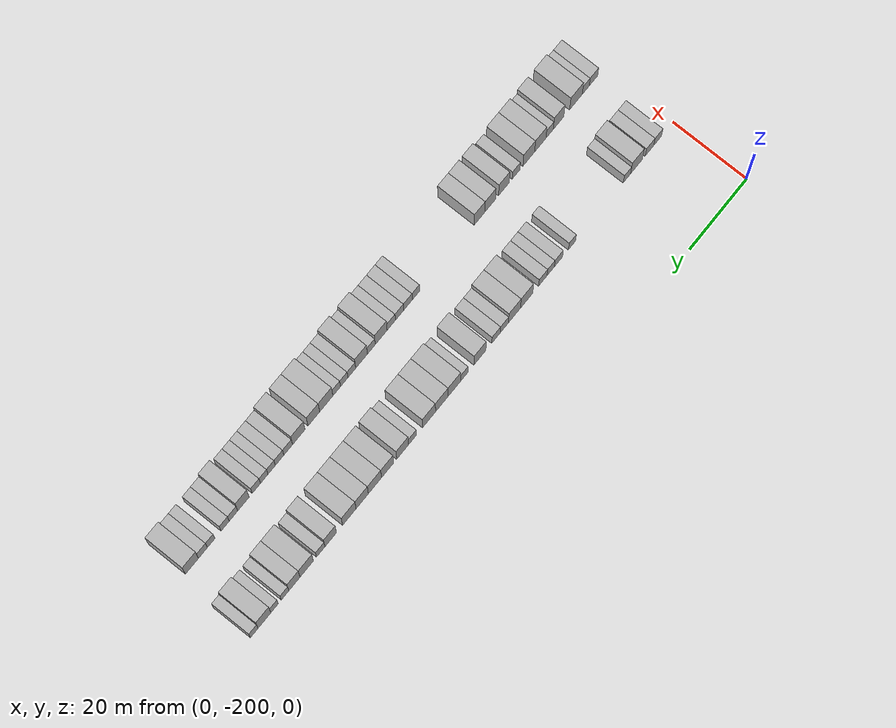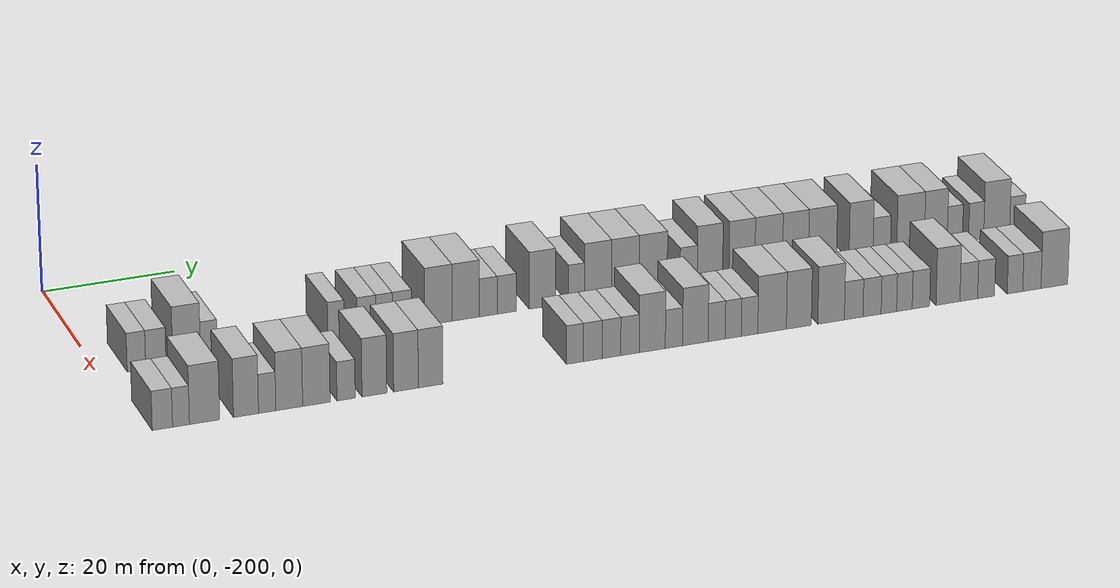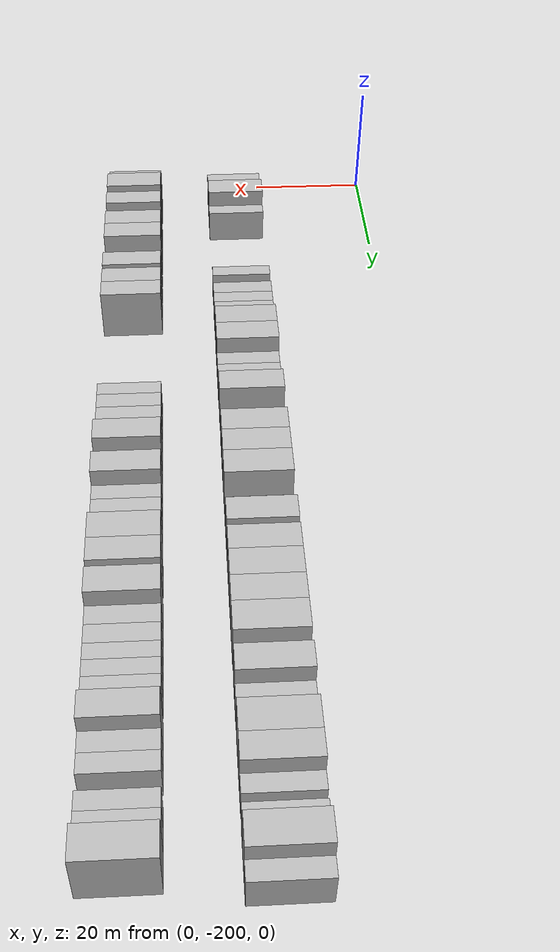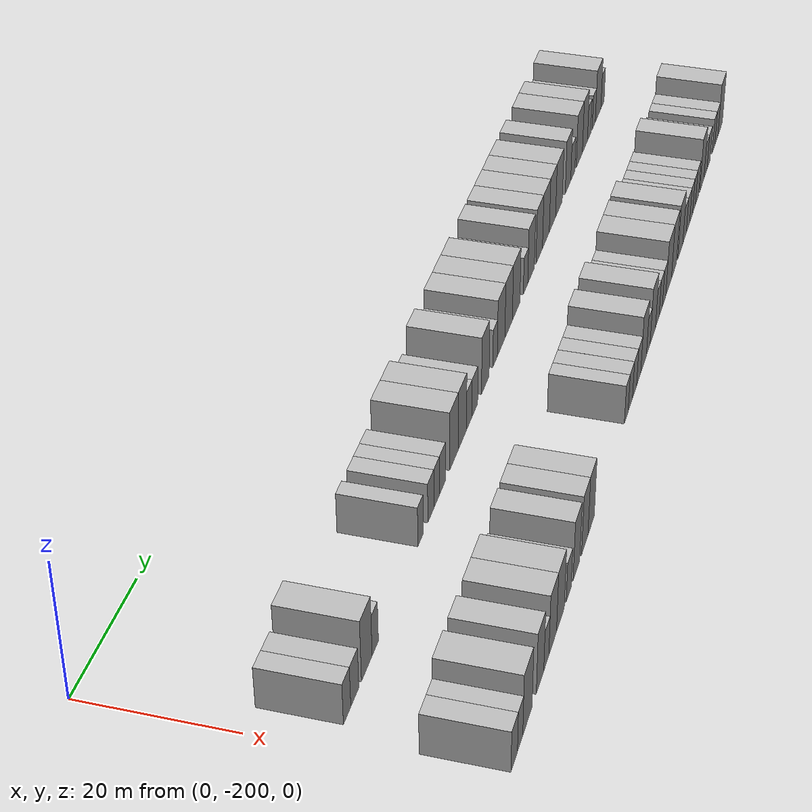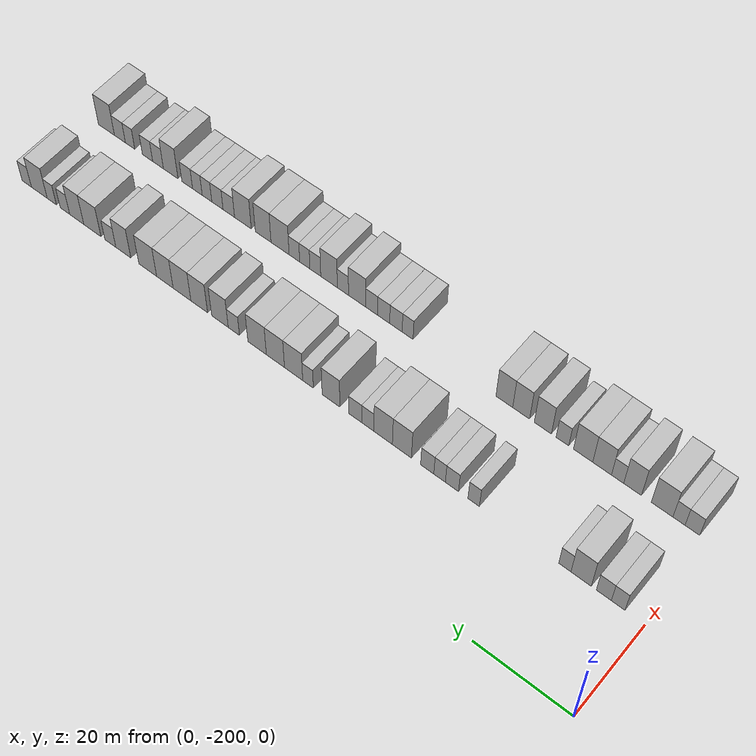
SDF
<sdf version="1.6">
 <world name="default">
  <model name="building_1">
   <static>1</static>
   <pose>25.0000 -194.6447 0 0.000000 0.000000 0.000000</pose>
   <link name="link">
    <pose>0 0 3.00 0 0 0</pose>
    <collision name="collision"><geometry><box><size>10.0000 2.7106 6.0000</size></box></geometry></collision>
    <visual name="visual">
     <cast_shadows>0</cast_shadows>
     <geometry><box><size>10.0000 2.7106 6.0000</size></box></geometry>
     <material>
      <script>
       <uri>model://HANNAS_wall/materials/scripts</uri>
       <uri>model://HANNAS_wall/materials/textures</uri>
       <name>vrc/HANNAS_wall</name>
      </script>
     </material>
    </visual>
   </link>
  </model>
  <model name="building_2">
   <static>1</static>
   <pose>25.0000 -191.7946 0 0.000000 0.000000 0.000000</pose>
   <link name="link">
    <pose>0 0 3.00 0 0 0</pose>
    <collision name="collision"><geometry><box><size>10.0000 2.9896 6.0000</size></box></geometry></collision>
    <visual name="visual">
     <cast_shadows>0</cast_shadows>
     <geometry><box><size>10.0000 2.9896 6.0000</size></box></geometry>
     <material>
      <script>
       <uri>model://HANNAS_wall/materials/scripts</uri>
       <uri>model://HANNAS_wall/materials/textures</uri>
       <name>vrc/HANNAS_wall</name>
      </script>
     </material>
    </visual>
   </link>
  </model>
  <model name="building_3">
   <static>1</static>
   <pose>25.0000 -187.2565 0 0.000000 0.000000 0.000000</pose>
   <link name="link">
    <pose>0 0 4.50 0 0 0</pose>
    <collision name="collision"><geometry><box><size>10.0000 4.0864 9.0000</size></box></geometry></collision>
    <visual name="visual">
     <cast_shadows>0</cast_shadows>
     <geometry><box><size>10.0000 4.0864 9.0000</size></box></geometry>
     <material>
      <script>
       <uri>model://HANNAS_wall/materials/scripts</uri>
       <uri>model://HANNAS_wall/materials/textures</uri>
       <name>vrc/HANNAS_wall</name>
      </script>
     </material>
    </visual>
   </link>
  </model>
  <model name="building_4">
   <static>1</static>
   <pose>25.0000 -183.9715 0 0.000000 0.000000 0.000000</pose>
   <link name="link">
    <pose>0 0 3.00 0 0 0</pose>
    <collision name="collision"><geometry><box><size>10.0000 2.4836 6.0000</size></box></geometry></collision>
    <visual name="visual">
     <cast_shadows>0</cast_shadows>
     <geometry><box><size>10.0000 2.4836 6.0000</size></box></geometry>
     <material>
      <script>
       <uri>model://HANNAS_wall/materials/scripts</uri>
       <uri>model://HANNAS_wall/materials/textures</uri>
       <name>vrc/HANNAS_wall</name>
      </script>
     </material>
    </visual>
   </link>
  </model>
  <model name="building_5">
   <static>1</static>
   <pose>25.0000 -165.0640 0 0.000000 0.000000 0.000000</pose>
   <link name="link">
    <pose>0 0 3.00 0 0 0</pose>
    <collision name="collision"><geometry><box><size>10.0000 2.4438 6.0000</size></box></geometry></collision>
    <visual name="visual">
     <cast_shadows>0</cast_shadows>
     <geometry><box><size>10.0000 2.4438 6.0000</size></box></geometry>
     <material>
      <script>
       <uri>model://HANNAS_wall/materials/scripts</uri>
       <uri>model://HANNAS_wall/materials/textures</uri>
       <name>vrc/HANNAS_wall</name>
      </script>
     </material>
    </visual>
   </link>
  </model>
  <model name="building_6">
   <static>1</static>
   <pose>25.0000 -160.4400 0 0.000000 0.000000 0.000000</pose>
   <link name="link">
    <pose>0 0 3.00 0 0 0</pose>
    <collision name="collision"><geometry><box><size>10.0000 2.8041 6.0000</size></box></geometry></collision>
    <visual name="visual">
     <cast_shadows>0</cast_shadows>
     <geometry><box><size>10.0000 2.8041 6.0000</size></box></geometry>
     <material>
      <script>
       <uri>model://HANNAS_wall/materials/scripts</uri>
       <uri>model://HANNAS_wall/materials/textures</uri>
       <name>vrc/HANNAS_wall</name>
      </script>
     </material>
    </visual>
   </link>
  </model>
  <model name="building_7">
   <static>1</static>
   <pose>25.0000 -157.7915 0 0.000000 0.000000 0.000000</pose>
   <link name="link">
    <pose>0 0 3.00 0 0 0</pose>
    <collision name="collision"><geometry><box><size>10.0000 2.4929 6.0000</size></box></geometry></collision>
    <visual name="visual">
     <cast_shadows>0</cast_shadows>
     <geometry><box><size>10.0000 2.4929 6.0000</size></box></geometry>
     <material>
      <script>
       <uri>model://HANNAS_wall/materials/scripts</uri>
       <uri>model://HANNAS_wall/materials/textures</uri>
       <name>vrc/HANNAS_wall</name>
      </script>
     </material>
    </visual>
   </link>
  </model>
  <model name="building_8">
   <static>1</static>
   <pose>25.0000 -155.1140 0 0.000000 0.000000 0.000000</pose>
   <link name="link">
    <pose>0 0 3.00 0 0 0</pose>
    <collision name="collision"><geometry><box><size>10.0000 2.8622 6.0000</size></box></geometry></collision>
    <visual name="visual">
     <cast_shadows>0</cast_shadows>
     <geometry><box><size>10.0000 2.8622 6.0000</size></box></geometry>
     <material>
      <script>
       <uri>model://HANNAS_wall/materials/scripts</uri>
       <uri>model://HANNAS_wall/materials/textures</uri>
       <name>vrc/HANNAS_wall</name>
      </script>
     </material>
    </visual>
   </link>
  </model>
  <model name="building_9">
   <static>1</static>
   <pose>25.0000 -149.5959 0 0.000000 0.000000 0.000000</pose>
   <link name="link">
    <pose>0 0 4.50 0 0 0</pose>
    <collision name="collision"><geometry><box><size>10.0000 4.1739 9.0000</size></box></geometry></collision>
    <visual name="visual">
     <cast_shadows>0</cast_shadows>
     <geometry><box><size>10.0000 4.1739 9.0000</size></box></geometry>
     <material>
      <script>
       <uri>model://HANNAS_wall/materials/scripts</uri>
       <uri>model://HANNAS_wall/materials/textures</uri>
       <name>vrc/HANNAS_wall</name>
      </script>
     </material>
    </visual>
   </link>
  </model>
  <model name="building_10">
   <static>1</static>
   <pose>25.0000 -145.4531 0 0.000000 0.000000 0.000000</pose>
   <link name="link">
    <pose>0 0 4.50 0 0 0</pose>
    <collision name="collision"><geometry><box><size>10.0000 4.1118 9.0000</size></box></geometry></collision>
    <visual name="visual">
     <cast_shadows>0</cast_shadows>
     <geometry><box><size>10.0000 4.1118 9.0000</size></box></geometry>
     <material>
      <script>
       <uri>model://HANNAS_wall/materials/scripts</uri>
       <uri>model://HANNAS_wall/materials/textures</uri>
       <name>vrc/HANNAS_wall</name>
      </script>
     </material>
    </visual>
   </link>
  </model>
  <model name="building_11">
   <static>1</static>
   <pose>25.0000 -142.0381 0 0.000000 0.000000 0.000000</pose>
   <link name="link">
    <pose>0 0 3.00 0 0 0</pose>
    <collision name="collision"><geometry><box><size>10.0000 2.7182 6.0000</size></box></geometry></collision>
    <visual name="visual">
     <cast_shadows>0</cast_shadows>
     <geometry><box><size>10.0000 2.7182 6.0000</size></box></geometry>
     <material>
      <script>
       <uri>model://HANNAS_wall/materials/scripts</uri>
       <uri>model://HANNAS_wall/materials/textures</uri>
       <name>vrc/HANNAS_wall</name>
      </script>
     </material>
    </visual>
   </link>
  </model>
  <model name="building_12">
   <static>1</static>
   <pose>25.0000 -139.2262 0 0.000000 0.000000 0.000000</pose>
   <link name="link">
    <pose>0 0 3.00 0 0 0</pose>
    <collision name="collision"><geometry><box><size>10.0000 2.9058 6.0000</size></box></geometry></collision>
    <visual name="visual">
     <cast_shadows>0</cast_shadows>
     <geometry><box><size>10.0000 2.9058 6.0000</size></box></geometry>
     <material>
      <script>
       <uri>model://HANNAS_wall/materials/scripts</uri>
       <uri>model://HANNAS_wall/materials/textures</uri>
       <name>vrc/HANNAS_wall</name>
      </script>
     </material>
    </visual>
   </link>
  </model>
  <model name="building_13">
   <static>1</static>
   <pose>25.0000 -133.7597 0 0.000000 0.000000 0.000000</pose>
   <link name="link">
    <pose>0 0 4.50 0 0 0</pose>
    <collision name="collision"><geometry><box><size>10.0000 4.0272 9.0000</size></box></geometry></collision>
    <visual name="visual">
     <cast_shadows>0</cast_shadows>
     <geometry><box><size>10.0000 4.0272 9.0000</size></box></geometry>
     <material>
      <script>
       <uri>model://HANNAS_wall/materials/scripts</uri>
       <uri>model://HANNAS_wall/materials/textures</uri>
       <name>vrc/HANNAS_wall</name>
      </script>
     </material>
    </visual>
   </link>
  </model>
  <model name="building_14">
   <static>1</static>
   <pose>25.0000 -128.5231 0 0.000000 0.000000 0.000000</pose>
   <link name="link">
    <pose>0 0 3.00 0 0 0</pose>
    <collision name="collision"><geometry><box><size>10.0000 2.4459 6.0000</size></box></geometry></collision>
    <visual name="visual">
     <cast_shadows>0</cast_shadows>
     <geometry><box><size>10.0000 2.4459 6.0000</size></box></geometry>
     <material>
      <script>
       <uri>model://HANNAS_wall/materials/scripts</uri>
       <uri>model://HANNAS_wall/materials/textures</uri>
       <name>vrc/HANNAS_wall</name>
      </script>
     </material>
    </visual>
   </link>
  </model>
  <model name="building_15">
   <static>1</static>
   <pose>25.0000 -125.1942 0 0.000000 0.000000 0.000000</pose>
   <link name="link">
    <pose>0 0 4.50 0 0 0</pose>
    <collision name="collision"><geometry><box><size>10.0000 4.2118 9.0000</size></box></geometry></collision>
    <visual name="visual">
     <cast_shadows>0</cast_shadows>
     <geometry><box><size>10.0000 4.2118 9.0000</size></box></geometry>
     <material>
      <script>
       <uri>model://HANNAS_wall/materials/scripts</uri>
       <uri>model://HANNAS_wall/materials/textures</uri>
       <name>vrc/HANNAS_wall</name>
      </script>
     </material>
    </visual>
   </link>
  </model>
  <model name="building_16">
   <static>1</static>
   <pose>25.0000 -120.9669 0 0.000000 0.000000 0.000000</pose>
   <link name="link">
    <pose>0 0 4.50 0 0 0</pose>
    <collision name="collision"><geometry><box><size>10.0000 4.2428 9.0000</size></box></geometry></collision>
    <visual name="visual">
     <cast_shadows>0</cast_shadows>
     <geometry><box><size>10.0000 4.2428 9.0000</size></box></geometry>
     <material>
      <script>
       <uri>model://HANNAS_wall/materials/scripts</uri>
       <uri>model://HANNAS_wall/materials/textures</uri>
       <name>vrc/HANNAS_wall</name>
      </script>
     </material>
    </visual>
   </link>
  </model>
  <model name="building_17">
   <static>1</static>
   <pose>25.0000 -116.6630 0 0.000000 0.000000 0.000000</pose>
   <link name="link">
    <pose>0 0 4.50 0 0 0</pose>
    <collision name="collision"><geometry><box><size>10.0000 4.3650 9.0000</size></box></geometry></collision>
    <visual name="visual">
     <cast_shadows>0</cast_shadows>
     <geometry><box><size>10.0000 4.3650 9.0000</size></box></geometry>
     <material>
      <script>
       <uri>model://HANNAS_wall/materials/scripts</uri>
       <uri>model://HANNAS_wall/materials/textures</uri>
       <name>vrc/HANNAS_wall</name>
      </script>
     </material>
    </visual>
   </link>
  </model>
  <model name="building_18">
   <static>1</static>
   <pose>25.0000 -111.1464 0 0.000000 0.000000 0.000000</pose>
   <link name="link">
    <pose>0 0 3.00 0 0 0</pose>
    <collision name="collision"><geometry><box><size>10.0000 2.6683 6.0000</size></box></geometry></collision>
    <visual name="visual">
     <cast_shadows>0</cast_shadows>
     <geometry><box><size>10.0000 2.6683 6.0000</size></box></geometry>
     <material>
      <script>
       <uri>model://HANNAS_wall/materials/scripts</uri>
       <uri>model://HANNAS_wall/materials/textures</uri>
       <name>vrc/HANNAS_wall</name>
      </script>
     </material>
    </visual>
   </link>
  </model>
  <model name="building_19">
   <static>1</static>
   <pose>25.0000 -107.8260 0 0.000000 0.000000 0.000000</pose>
   <link name="link">
    <pose>0 0 4.50 0 0 0</pose>
    <collision name="collision"><geometry><box><size>10.0000 3.9724 9.0000</size></box></geometry></collision>
    <visual name="visual">
     <cast_shadows>0</cast_shadows>
     <geometry><box><size>10.0000 3.9724 9.0000</size></box></geometry>
     <material>
      <script>
       <uri>model://HANNAS_wall/materials/scripts</uri>
       <uri>model://HANNAS_wall/materials/textures</uri>
       <name>vrc/HANNAS_wall</name>
      </script>
     </material>
    </visual>
   </link>
  </model>
  <model name="building_20">
   <static>1</static>
   <pose>25.0000 -102.8106 0 0.000000 0.000000 0.000000</pose>
   <link name="link">
    <pose>0 0 4.50 0 0 0</pose>
    <collision name="collision"><geometry><box><size>10.0000 4.0584 9.0000</size></box></geometry></collision>
    <visual name="visual">
     <cast_shadows>0</cast_shadows>
     <geometry><box><size>10.0000 4.0584 9.0000</size></box></geometry>
     <material>
      <script>
       <uri>model://HANNAS_wall/materials/scripts</uri>
       <uri>model://HANNAS_wall/materials/textures</uri>
       <name>vrc/HANNAS_wall</name>
      </script>
     </material>
    </visual>
   </link>
  </model>
  <model name="building_21">
   <static>1</static>
   <pose>25.0000 -98.6065 0 0.000000 0.000000 0.000000</pose>
   <link name="link">
    <pose>0 0 4.50 0 0 0</pose>
    <collision name="collision"><geometry><box><size>10.0000 4.3498 9.0000</size></box></geometry></collision>
    <visual name="visual">
     <cast_shadows>0</cast_shadows>
     <geometry><box><size>10.0000 4.3498 9.0000</size></box></geometry>
     <material>
      <script>
       <uri>model://HANNAS_wall/materials/scripts</uri>
       <uri>model://HANNAS_wall/materials/textures</uri>
       <name>vrc/HANNAS_wall</name>
      </script>
     </material>
    </visual>
   </link>
  </model>
  <model name="building_22">
   <static>1</static>
   <pose>25.0000 -94.3852 0 0.000000 0.000000 0.000000</pose>
   <link name="link">
    <pose>0 0 4.50 0 0 0</pose>
    <collision name="collision"><geometry><box><size>10.0000 4.0928 9.0000</size></box></geometry></collision>
    <visual name="visual">
     <cast_shadows>0</cast_shadows>
     <geometry><box><size>10.0000 4.0928 9.0000</size></box></geometry>
     <material>
      <script>
       <uri>model://HANNAS_wall/materials/scripts</uri>
       <uri>model://HANNAS_wall/materials/textures</uri>
       <name>vrc/HANNAS_wall</name>
      </script>
     </material>
    </visual>
   </link>
  </model>
  <model name="building_23">
   <static>1</static>
   <pose>25.0000 -90.1121 0 0.000000 0.000000 0.000000</pose>
   <link name="link">
    <pose>0 0 4.50 0 0 0</pose>
    <collision name="collision"><geometry><box><size>10.0000 4.4532 9.0000</size></box></geometry></collision>
    <visual name="visual">
     <cast_shadows>0</cast_shadows>
     <geometry><box><size>10.0000 4.4532 9.0000</size></box></geometry>
     <material>
      <script>
       <uri>model://HANNAS_wall/materials/scripts</uri>
       <uri>model://HANNAS_wall/materials/textures</uri>
       <name>vrc/HANNAS_wall</name>
      </script>
     </material>
    </visual>
   </link>
  </model>
  <model name="building_24">
   <static>1</static>
   <pose>25.0000 -83.9858 0 0.000000 0.000000 0.000000</pose>
   <link name="link">
    <pose>0 0 4.50 0 0 0</pose>
    <collision name="collision"><geometry><box><size>10.0000 3.7995 9.0000</size></box></geometry></collision>
    <visual name="visual">
     <cast_shadows>0</cast_shadows>
     <geometry><box><size>10.0000 3.7995 9.0000</size></box></geometry>
     <material>
      <script>
       <uri>model://HANNAS_wall/materials/scripts</uri>
       <uri>model://HANNAS_wall/materials/textures</uri>
       <name>vrc/HANNAS_wall</name>
      </script>
     </material>
    </visual>
   </link>
  </model>
  <model name="building_25">
   <static>1</static>
   <pose>25.0000 -80.6869 0 0.000000 0.000000 0.000000</pose>
   <link name="link">
    <pose>0 0 3.00 0 0 0</pose>
    <collision name="collision"><geometry><box><size>10.0000 2.7982 6.0000</size></box></geometry></collision>
    <visual name="visual">
     <cast_shadows>0</cast_shadows>
     <geometry><box><size>10.0000 2.7982 6.0000</size></box></geometry>
     <material>
      <script>
       <uri>model://HANNAS_wall/materials/scripts</uri>
       <uri>model://HANNAS_wall/materials/textures</uri>
       <name>vrc/HANNAS_wall</name>
      </script>
     </material>
    </visual>
   </link>
  </model>
  <model name="building_26">
   <static>1</static>
   <pose>25.0000 -76.0856 0 0.000000 0.000000 0.000000</pose>
   <link name="link">
    <pose>0 0 4.50 0 0 0</pose>
    <collision name="collision"><geometry><box><size>10.0000 4.4045 9.0000</size></box></geometry></collision>
    <visual name="visual">
     <cast_shadows>0</cast_shadows>
     <geometry><box><size>10.0000 4.4045 9.0000</size></box></geometry>
     <material>
      <script>
       <uri>model://HANNAS_wall/materials/scripts</uri>
       <uri>model://HANNAS_wall/materials/textures</uri>
       <name>vrc/HANNAS_wall</name>
      </script>
     </material>
    </visual>
   </link>
  </model>
  <model name="building_27">
   <static>1</static>
   <pose>25.0000 -72.0492 0 0.000000 0.000000 0.000000</pose>
   <link name="link">
    <pose>0 0 4.50 0 0 0</pose>
    <collision name="collision"><geometry><box><size>10.0000 3.6683 9.0000</size></box></geometry></collision>
    <visual name="visual">
     <cast_shadows>0</cast_shadows>
     <geometry><box><size>10.0000 3.6683 9.0000</size></box></geometry>
     <material>
      <script>
       <uri>model://HANNAS_wall/materials/scripts</uri>
       <uri>model://HANNAS_wall/materials/textures</uri>
       <name>vrc/HANNAS_wall</name>
      </script>
     </material>
    </visual>
   </link>
  </model>
  <model name="building_28">
   <static>1</static>
   <pose>25.0000 -68.9863 0 0.000000 0.000000 0.000000</pose>
   <link name="link">
    <pose>0 0 3.00 0 0 0</pose>
    <collision name="collision"><geometry><box><size>10.0000 2.4575 6.0000</size></box></geometry></collision>
    <visual name="visual">
     <cast_shadows>0</cast_shadows>
     <geometry><box><size>10.0000 2.4575 6.0000</size></box></geometry>
     <material>
      <script>
       <uri>model://HANNAS_wall/materials/scripts</uri>
       <uri>model://HANNAS_wall/materials/textures</uri>
       <name>vrc/HANNAS_wall</name>
      </script>
     </material>
    </visual>
   </link>
  </model>
  <model name="building_29">
   <static>1</static>
   <pose>25.0000 -65.5421 0 0.000000 0.000000 0.000000</pose>
   <link name="link">
    <pose>0 0 3.00 0 0 0</pose>
    <collision name="collision"><geometry><box><size>10.0000 2.4310 6.0000</size></box></geometry></collision>
    <visual name="visual">
     <cast_shadows>0</cast_shadows>
     <geometry><box><size>10.0000 2.4310 6.0000</size></box></geometry>
     <material>
      <script>
       <uri>model://HANNAS_wall/materials/scripts</uri>
       <uri>model://HANNAS_wall/materials/textures</uri>
       <name>vrc/HANNAS_wall</name>
      </script>
     </material>
    </visual>
   </link>
  </model>
  <model name="building_30">
   <static>1</static>
   <pose>25.0000 -62.2385 0 0.000000 0.000000 0.000000</pose>
   <link name="link">
    <pose>0 0 4.50 0 0 0</pose>
    <collision name="collision"><geometry><box><size>10.0000 4.1763 9.0000</size></box></geometry></collision>
    <visual name="visual">
     <cast_shadows>0</cast_shadows>
     <geometry><box><size>10.0000 4.1763 9.0000</size></box></geometry>
     <material>
      <script>
       <uri>model://HANNAS_wall/materials/scripts</uri>
       <uri>model://HANNAS_wall/materials/textures</uri>
       <name>vrc/HANNAS_wall</name>
      </script>
     </material>
    </visual>
   </link>
  </model>
  <model name="building_31">
   <static>1</static>
   <pose>25.0000 -58.9045 0 0.000000 0.000000 0.000000</pose>
   <link name="link">
    <pose>0 0 3.00 0 0 0</pose>
    <collision name="collision"><geometry><box><size>10.0000 2.4916 6.0000</size></box></geometry></collision>
    <visual name="visual">
     <cast_shadows>0</cast_shadows>
     <geometry><box><size>10.0000 2.4916 6.0000</size></box></geometry>
     <material>
      <script>
       <uri>model://HANNAS_wall/materials/scripts</uri>
       <uri>model://HANNAS_wall/materials/textures</uri>
       <name>vrc/HANNAS_wall</name>
      </script>
     </material>
    </visual>
   </link>
  </model>
  <model name="building_102">
   <static>1</static>
   <pose>44.0000 -196.5353 0 0.000000 0.000000 0.000000</pose>
   <link name="link">
    <pose>0 0 3.00 0 0 0</pose>
    <collision name="collision"><geometry><box><size>10.0000 2.9295 6.0000</size></box></geometry></collision>
    <visual name="visual">
     <cast_shadows>0</cast_shadows>
     <geometry><box><size>10.0000 2.9295 6.0000</size></box></geometry>
     <material>
      <script>
       <uri>model://HANNAS_wall/materials/scripts</uri>
       <uri>model://HANNAS_wall/materials/textures</uri>
       <name>vrc/HANNAS_wall</name>
      </script>
     </material>
    </visual>
   </link>
  </model>
  <model name="building_103">
   <static>1</static>
   <pose>44.0000 -193.8550 0 0.000000 0.000000 0.000000</pose>
   <link name="link">
    <pose>0 0 3.00 0 0 0</pose>
    <collision name="collision"><geometry><box><size>10.0000 2.4311 6.0000</size></box></geometry></collision>
    <visual name="visual">
     <cast_shadows>0</cast_shadows>
     <geometry><box><size>10.0000 2.4311 6.0000</size></box></geometry>
     <material>
      <script>
       <uri>model://HANNAS_wall/materials/scripts</uri>
       <uri>model://HANNAS_wall/materials/textures</uri>
       <name>vrc/HANNAS_wall</name>
      </script>
     </material>
    </visual>
   </link>
  </model>
  <model name="building_104">
   <static>1</static>
   <pose>44.0000 -190.4529 0 0.000000 0.000000 0.000000</pose>
   <link name="link">
    <pose>0 0 4.50 0 0 0</pose>
    <collision name="collision"><geometry><box><size>10.0000 4.3731 9.0000</size></box></geometry></collision>
    <visual name="visual">
     <cast_shadows>0</cast_shadows>
     <geometry><box><size>10.0000 4.3731 9.0000</size></box></geometry>
     <material>
      <script>
       <uri>model://HANNAS_wall/materials/scripts</uri>
       <uri>model://HANNAS_wall/materials/textures</uri>
       <name>vrc/HANNAS_wall</name>
      </script>
     </material>
    </visual>
   </link>
  </model>
  <model name="building_105">
   <static>1</static>
   <pose>44.0000 -184.4496 0 0.000000 0.000000 0.000000</pose>
   <link name="link">
    <pose>0 0 4.50 0 0 0</pose>
    <collision name="collision"><geometry><box><size>10.0000 3.6335 9.0000</size></box></geometry></collision>
    <visual name="visual">
     <cast_shadows>0</cast_shadows>
     <geometry><box><size>10.0000 3.6335 9.0000</size></box></geometry>
     <material>
      <script>
       <uri>model://HANNAS_wall/materials/scripts</uri>
       <uri>model://HANNAS_wall/materials/textures</uri>
       <name>vrc/HANNAS_wall</name>
      </script>
     </material>
    </visual>
   </link>
  </model>
  <model name="building_106">
   <static>1</static>
   <pose>44.0000 -181.3695 0 0.000000 0.000000 0.000000</pose>
   <link name="link">
    <pose>0 0 3.00 0 0 0</pose>
    <collision name="collision"><geometry><box><size>10.0000 2.5266 6.0000</size></box></geometry></collision>
    <visual name="visual">
     <cast_shadows>0</cast_shadows>
     <geometry><box><size>10.0000 2.5266 6.0000</size></box></geometry>
     <material>
      <script>
       <uri>model://HANNAS_wall/materials/scripts</uri>
       <uri>model://HANNAS_wall/materials/textures</uri>
       <name>vrc/HANNAS_wall</name>
      </script>
     </material>
    </visual>
   </link>
  </model>
  <model name="building_107">
   <static>1</static>
   <pose>44.0000 -178.1562 0 0.000000 0.000000 0.000000</pose>
   <link name="link">
    <pose>0 0 4.50 0 0 0</pose>
    <collision name="collision"><geometry><box><size>10.0000 3.9000 9.0000</size></box></geometry></collision>
    <visual name="visual">
     <cast_shadows>0</cast_shadows>
     <geometry><box><size>10.0000 3.9000 9.0000</size></box></geometry>
     <material>
      <script>
       <uri>model://HANNAS_wall/materials/scripts</uri>
       <uri>model://HANNAS_wall/materials/textures</uri>
       <name>vrc/HANNAS_wall</name>
      </script>
     </material>
    </visual>
   </link>
  </model>
  <model name="building_108">
   <static>1</static>
   <pose>44.0000 -174.1901 0 0.000000 0.000000 0.000000</pose>
   <link name="link">
    <pose>0 0 4.50 0 0 0</pose>
    <collision name="collision"><geometry><box><size>10.0000 4.0322 9.0000</size></box></geometry></collision>
    <visual name="visual">
     <cast_shadows>0</cast_shadows>
     <geometry><box><size>10.0000 4.0322 9.0000</size></box></geometry>
     <material>
      <script>
       <uri>model://HANNAS_wall/materials/scripts</uri>
       <uri>model://HANNAS_wall/materials/textures</uri>
       <name>vrc/HANNAS_wall</name>
      </script>
     </material>
    </visual>
   </link>
  </model>
  <model name="building_109">
   <static>1</static>
   <pose>44.0000 -169.8359 0 0.000000 0.000000 0.000000</pose>
   <link name="link">
    <pose>0 0 3.00 0 0 0</pose>
    <collision name="collision"><geometry><box><size>10.0000 2.6761 6.0000</size></box></geometry></collision>
    <visual name="visual">
     <cast_shadows>0</cast_shadows>
     <geometry><box><size>10.0000 2.6761 6.0000</size></box></geometry>
     <material>
      <script>
       <uri>model://HANNAS_wall/materials/scripts</uri>
       <uri>model://HANNAS_wall/materials/textures</uri>
       <name>vrc/HANNAS_wall</name>
      </script>
     </material>
    </visual>
   </link>
  </model>
  <model name="building_110">
   <static>1</static>
   <pose>44.0000 -165.6674 0 0.000000 0.000000 0.000000</pose>
   <link name="link">
    <pose>0 0 4.50 0 0 0</pose>
    <collision name="collision"><geometry><box><size>10.0000 3.6610 9.0000</size></box></geometry></collision>
    <visual name="visual">
     <cast_shadows>0</cast_shadows>
     <geometry><box><size>10.0000 3.6610 9.0000</size></box></geometry>
     <material>
      <script>
       <uri>model://HANNAS_wall/materials/scripts</uri>
       <uri>model://HANNAS_wall/materials/textures</uri>
       <name>vrc/HANNAS_wall</name>
      </script>
     </material>
    </visual>
   </link>
  </model>
  <model name="building_111">
   <static>1</static>
   <pose>44.0000 -161.0129 0 0.000000 0.000000 0.000000</pose>
   <link name="link">
    <pose>0 0 4.50 0 0 0</pose>
    <collision name="collision"><geometry><box><size>10.0000 3.6479 9.0000</size></box></geometry></collision>
    <visual name="visual">
     <cast_shadows>0</cast_shadows>
     <geometry><box><size>10.0000 3.6479 9.0000</size></box></geometry>
     <material>
      <script>
       <uri>model://HANNAS_wall/materials/scripts</uri>
       <uri>model://HANNAS_wall/materials/textures</uri>
       <name>vrc/HANNAS_wall</name>
      </script>
     </material>
    </visual>
   </link>
  </model>
  <model name="building_112">
   <static>1</static>
   <pose>44.0000 -157.3645 0 0.000000 0.000000 0.000000</pose>
   <link name="link">
    <pose>0 0 4.50 0 0 0</pose>
    <collision name="collision"><geometry><box><size>10.0000 3.6488 9.0000</size></box></geometry></collision>
    <visual name="visual">
     <cast_shadows>0</cast_shadows>
     <geometry><box><size>10.0000 3.6488 9.0000</size></box></geometry>
     <material>
      <script>
       <uri>model://HANNAS_wall/materials/scripts</uri>
       <uri>model://HANNAS_wall/materials/textures</uri>
       <name>vrc/HANNAS_wall</name>
      </script>
     </material>
    </visual>
   </link>
  </model>
  <model name="building_113">
   <static>1</static>
   <pose>44.0000 -135.8015 0 0.000000 0.000000 0.000000</pose>
   <link name="link">
    <pose>0 0 3.00 0 0 0</pose>
    <collision name="collision"><geometry><box><size>10.0000 2.4924 6.0000</size></box></geometry></collision>
    <visual name="visual">
     <cast_shadows>0</cast_shadows>
     <geometry><box><size>10.0000 2.4924 6.0000</size></box></geometry>
     <material>
      <script>
       <uri>model://HANNAS_wall/materials/scripts</uri>
       <uri>model://HANNAS_wall/materials/textures</uri>
       <name>vrc/HANNAS_wall</name>
      </script>
     </material>
    </visual>
   </link>
  </model>
  <model name="building_114">
   <static>1</static>
   <pose>44.0000 -133.1254 0 0.000000 0.000000 0.000000</pose>
   <link name="link">
    <pose>0 0 3.00 0 0 0</pose>
    <collision name="collision"><geometry><box><size>10.0000 2.8598 6.0000</size></box></geometry></collision>
    <visual name="visual">
     <cast_shadows>0</cast_shadows>
     <geometry><box><size>10.0000 2.8598 6.0000</size></box></geometry>
     <material>
      <script>
       <uri>model://HANNAS_wall/materials/scripts</uri>
       <uri>model://HANNAS_wall/materials/textures</uri>
       <name>vrc/HANNAS_wall</name>
      </script>
     </material>
    </visual>
   </link>
  </model>
  <model name="building_115">
   <static>1</static>
   <pose>44.0000 -130.2917 0 0.000000 0.000000 0.000000</pose>
   <link name="link">
    <pose>0 0 3.00 0 0 0</pose>
    <collision name="collision"><geometry><box><size>10.0000 2.8074 6.0000</size></box></geometry></collision>
    <visual name="visual">
     <cast_shadows>0</cast_shadows>
     <geometry><box><size>10.0000 2.8074 6.0000</size></box></geometry>
     <material>
      <script>
       <uri>model://HANNAS_wall/materials/scripts</uri>
       <uri>model://HANNAS_wall/materials/textures</uri>
       <name>vrc/HANNAS_wall</name>
      </script>
     </material>
    </visual>
   </link>
  </model>
  <model name="building_116">
   <static>1</static>
   <pose>44.0000 -127.4849 0 0.000000 0.000000 0.000000</pose>
   <link name="link">
    <pose>0 0 3.00 0 0 0</pose>
    <collision name="collision"><geometry><box><size>10.0000 2.8063 6.0000</size></box></geometry></collision>
    <visual name="visual">
     <cast_shadows>0</cast_shadows>
     <geometry><box><size>10.0000 2.8063 6.0000</size></box></geometry>
     <material>
      <script>
       <uri>model://HANNAS_wall/materials/scripts</uri>
       <uri>model://HANNAS_wall/materials/textures</uri>
       <name>vrc/HANNAS_wall</name>
      </script>
     </material>
    </visual>
   </link>
  </model>
  <model name="building_117">
   <static>1</static>
   <pose>44.0000 -124.0967 0 0.000000 0.000000 0.000000</pose>
   <link name="link">
    <pose>0 0 4.50 0 0 0</pose>
    <collision name="collision"><geometry><box><size>10.0000 3.9700 9.0000</size></box></geometry></collision>
    <visual name="visual">
     <cast_shadows>0</cast_shadows>
     <geometry><box><size>10.0000 3.9700 9.0000</size></box></geometry>
     <material>
      <script>
       <uri>model://HANNAS_wall/materials/scripts</uri>
       <uri>model://HANNAS_wall/materials/textures</uri>
       <name>vrc/HANNAS_wall</name>
      </script>
     </material>
    </visual>
   </link>
  </model>
  <model name="building_118">
   <static>1</static>
   <pose>44.0000 -120.7946 0 0.000000 0.000000 0.000000</pose>
   <link name="link">
    <pose>0 0 3.00 0 0 0</pose>
    <collision name="collision"><geometry><box><size>10.0000 2.6342 6.0000</size></box></geometry></collision>
    <visual name="visual">
     <cast_shadows>0</cast_shadows>
     <geometry><box><size>10.0000 2.6342 6.0000</size></box></geometry>
     <material>
      <script>
       <uri>model://HANNAS_wall/materials/scripts</uri>
       <uri>model://HANNAS_wall/materials/textures</uri>
       <name>vrc/HANNAS_wall</name>
      </script>
     </material>
    </visual>
   </link>
  </model>
  <model name="building_119">
   <static>1</static>
   <pose>44.0000 -117.5185 0 0.000000 0.000000 0.000000</pose>
   <link name="link">
    <pose>0 0 4.50 0 0 0</pose>
    <collision name="collision"><geometry><box><size>10.0000 3.9182 9.0000</size></box></geometry></collision>
    <visual name="visual">
     <cast_shadows>0</cast_shadows>
     <geometry><box><size>10.0000 3.9182 9.0000</size></box></geometry>
     <material>
      <script>
       <uri>model://HANNAS_wall/materials/scripts</uri>
       <uri>model://HANNAS_wall/materials/textures</uri>
       <name>vrc/HANNAS_wall</name>
      </script>
     </material>
    </visual>
   </link>
  </model>
  <model name="building_120">
   <static>1</static>
   <pose>44.0000 -114.2616 0 0.000000 0.000000 0.000000</pose>
   <link name="link">
    <pose>0 0 3.00 0 0 0</pose>
    <collision name="collision"><geometry><box><size>10.0000 2.5955 6.0000</size></box></geometry></collision>
    <visual name="visual">
     <cast_shadows>0</cast_shadows>
     <geometry><box><size>10.0000 2.5955 6.0000</size></box></geometry>
     <material>
      <script>
       <uri>model://HANNAS_wall/materials/scripts</uri>
       <uri>model://HANNAS_wall/materials/textures</uri>
       <name>vrc/HANNAS_wall</name>
      </script>
     </material>
    </visual>
   </link>
  </model>
  <model name="building_121">
   <static>1</static>
   <pose>44.0000 -111.7365 0 0.000000 0.000000 0.000000</pose>
   <link name="link">
    <pose>0 0 3.00 0 0 0</pose>
    <collision name="collision"><geometry><box><size>10.0000 2.4547 6.0000</size></box></geometry></collision>
    <visual name="visual">
     <cast_shadows>0</cast_shadows>
     <geometry><box><size>10.0000 2.4547 6.0000</size></box></geometry>
     <material>
      <script>
       <uri>model://HANNAS_wall/materials/scripts</uri>
       <uri>model://HANNAS_wall/materials/textures</uri>
       <name>vrc/HANNAS_wall</name>
      </script>
     </material>
    </visual>
   </link>
  </model>
  <model name="building_122">
   <static>1</static>
   <pose>44.0000 -109.2348 0 0.000000 0.000000 0.000000</pose>
   <link name="link">
    <pose>0 0 3.00 0 0 0</pose>
    <collision name="collision"><geometry><box><size>10.0000 2.5488 6.0000</size></box></geometry></collision>
    <visual name="visual">
     <cast_shadows>0</cast_shadows>
     <geometry><box><size>10.0000 2.5488 6.0000</size></box></geometry>
     <material>
      <script>
       <uri>model://HANNAS_wall/materials/scripts</uri>
       <uri>model://HANNAS_wall/materials/textures</uri>
       <name>vrc/HANNAS_wall</name>
      </script>
     </material>
    </visual>
   </link>
  </model>
  <model name="building_123">
   <static>1</static>
   <pose>44.0000 -105.7616 0 0.000000 0.000000 0.000000</pose>
   <link name="link">
    <pose>0 0 4.50 0 0 0</pose>
    <collision name="collision"><geometry><box><size>10.0000 4.3976 9.0000</size></box></geometry></collision>
    <visual name="visual">
     <cast_shadows>0</cast_shadows>
     <geometry><box><size>10.0000 4.3976 9.0000</size></box></geometry>
     <material>
      <script>
       <uri>model://HANNAS_wall/materials/scripts</uri>
       <uri>model://HANNAS_wall/materials/textures</uri>
       <name>vrc/HANNAS_wall</name>
      </script>
     </material>
    </visual>
   </link>
  </model>
  <model name="building_124">
   <static>1</static>
   <pose>44.0000 -101.6304 0 0.000000 0.000000 0.000000</pose>
   <link name="link">
    <pose>0 0 4.50 0 0 0</pose>
    <collision name="collision"><geometry><box><size>10.0000 3.8648 9.0000</size></box></geometry></collision>
    <visual name="visual">
     <cast_shadows>0</cast_shadows>
     <geometry><box><size>10.0000 3.8648 9.0000</size></box></geometry>
     <material>
      <script>
       <uri>model://HANNAS_wall/materials/scripts</uri>
       <uri>model://HANNAS_wall/materials/textures</uri>
       <name>vrc/HANNAS_wall</name>
      </script>
     </material>
    </visual>
   </link>
  </model>
  <model name="building_125">
   <static>1</static>
   <pose>44.0000 -96.6340 0 0.000000 0.000000 0.000000</pose>
   <link name="link">
    <pose>0 0 4.50 0 0 0</pose>
    <collision name="collision"><geometry><box><size>10.0000 4.1279 9.0000</size></box></geometry></collision>
    <visual name="visual">
     <cast_shadows>0</cast_shadows>
     <geometry><box><size>10.0000 4.1279 9.0000</size></box></geometry>
     <material>
      <script>
       <uri>model://HANNAS_wall/materials/scripts</uri>
       <uri>model://HANNAS_wall/materials/textures</uri>
       <name>vrc/HANNAS_wall</name>
      </script>
     </material>
    </visual>
   </link>
  </model>
  <model name="building_126">
   <static>1</static>
   <pose>44.0000 -93.1272 0 0.000000 0.000000 0.000000</pose>
   <link name="link">
    <pose>0 0 3.00 0 0 0</pose>
    <collision name="collision"><geometry><box><size>10.0000 2.8858 6.0000</size></box></geometry></collision>
    <visual name="visual">
     <cast_shadows>0</cast_shadows>
     <geometry><box><size>10.0000 2.8858 6.0000</size></box></geometry>
     <material>
      <script>
       <uri>model://HANNAS_wall/materials/scripts</uri>
       <uri>model://HANNAS_wall/materials/textures</uri>
       <name>vrc/HANNAS_wall</name>
      </script>
     </material>
    </visual>
   </link>
  </model>
  <model name="building_127">
   <static>1</static>
   <pose>44.0000 -90.2723 0 0.000000 0.000000 0.000000</pose>
   <link name="link">
    <pose>0 0 3.00 0 0 0</pose>
    <collision name="collision"><geometry><box><size>10.0000 2.8239 6.0000</size></box></geometry></collision>
    <visual name="visual">
     <cast_shadows>0</cast_shadows>
     <geometry><box><size>10.0000 2.8239 6.0000</size></box></geometry>
     <material>
      <script>
       <uri>model://HANNAS_wall/materials/scripts</uri>
       <uri>model://HANNAS_wall/materials/textures</uri>
       <name>vrc/HANNAS_wall</name>
      </script>
     </material>
    </visual>
   </link>
  </model>
  <model name="building_128">
   <static>1</static>
   <pose>44.0000 -87.6489 0 0.000000 0.000000 0.000000</pose>
   <link name="link">
    <pose>0 0 3.00 0 0 0</pose>
    <collision name="collision"><geometry><box><size>10.0000 2.4231 6.0000</size></box></geometry></collision>
    <visual name="visual">
     <cast_shadows>0</cast_shadows>
     <geometry><box><size>10.0000 2.4231 6.0000</size></box></geometry>
     <material>
      <script>
       <uri>model://HANNAS_wall/materials/scripts</uri>
       <uri>model://HANNAS_wall/materials/textures</uri>
       <name>vrc/HANNAS_wall</name>
      </script>
     </material>
    </visual>
   </link>
  </model>
  <model name="building_129">
   <static>1</static>
   <pose>44.0000 -85.2185 0 0.000000 0.000000 0.000000</pose>
   <link name="link">
    <pose>0 0 3.00 0 0 0</pose>
    <collision name="collision"><geometry><box><size>10.0000 2.4377 6.0000</size></box></geometry></collision>
    <visual name="visual">
     <cast_shadows>0</cast_shadows>
     <geometry><box><size>10.0000 2.4377 6.0000</size></box></geometry>
     <material>
      <script>
       <uri>model://HANNAS_wall/materials/scripts</uri>
       <uri>model://HANNAS_wall/materials/textures</uri>
       <name>vrc/HANNAS_wall</name>
      </script>
     </material>
    </visual>
   </link>
  </model>
  <model name="building_130">
   <static>1</static>
   <pose>44.0000 -82.6304 0 0.000000 0.000000 0.000000</pose>
   <link name="link">
    <pose>0 0 3.00 0 0 0</pose>
    <collision name="collision"><geometry><box><size>10.0000 2.7384 6.0000</size></box></geometry></collision>
    <visual name="visual">
     <cast_shadows>0</cast_shadows>
     <geometry><box><size>10.0000 2.7384 6.0000</size></box></geometry>
     <material>
      <script>
       <uri>model://HANNAS_wall/materials/scripts</uri>
       <uri>model://HANNAS_wall/materials/textures</uri>
       <name>vrc/HANNAS_wall</name>
      </script>
     </material>
    </visual>
   </link>
  </model>
  <model name="building_131">
   <static>1</static>
   <pose>44.0000 -78.3849 0 0.000000 0.000000 0.000000</pose>
   <link name="link">
    <pose>0 0 4.50 0 0 0</pose>
    <collision name="collision"><geometry><box><size>10.0000 3.7525 9.0000</size></box></geometry></collision>
    <visual name="visual">
     <cast_shadows>0</cast_shadows>
     <geometry><box><size>10.0000 3.7525 9.0000</size></box></geometry>
     <material>
      <script>
       <uri>model://HANNAS_wall/materials/scripts</uri>
       <uri>model://HANNAS_wall/materials/textures</uri>
       <name>vrc/HANNAS_wall</name>
      </script>
     </material>
    </visual>
   </link>
  </model>
  <model name="building_132">
   <static>1</static>
   <pose>44.0000 -75.1166 0 0.000000 0.000000 0.000000</pose>
   <link name="link">
    <pose>0 0 3.00 0 0 0</pose>
    <collision name="collision"><geometry><box><size>10.0000 2.7841 6.0000</size></box></geometry></collision>
    <visual name="visual">
     <cast_shadows>0</cast_shadows>
     <geometry><box><size>10.0000 2.7841 6.0000</size></box></geometry>
     <material>
      <script>
       <uri>model://HANNAS_wall/materials/scripts</uri>
       <uri>model://HANNAS_wall/materials/textures</uri>
       <name>vrc/HANNAS_wall</name>
      </script>
     </material>
    </visual>
   </link>
  </model>
  <model name="building_133">
   <static>1</static>
   <pose>44.0000 -72.3867 0 0.000000 0.000000 0.000000</pose>
   <link name="link">
    <pose>0 0 3.00 0 0 0</pose>
    <collision name="collision"><geometry><box><size>10.0000 2.6758 6.0000</size></box></geometry></collision>
    <visual name="visual">
     <cast_shadows>0</cast_shadows>
     <geometry><box><size>10.0000 2.6758 6.0000</size></box></geometry>
     <material>
      <script>
       <uri>model://HANNAS_wall/materials/scripts</uri>
       <uri>model://HANNAS_wall/materials/textures</uri>
       <name>vrc/HANNAS_wall</name>
      </script>
     </material>
    </visual>
   </link>
  </model>
  <model name="building_134">
   <static>1</static>
   <pose>44.0000 -67.8191 0 0.000000 0.000000 0.000000</pose>
   <link name="link">
    <pose>0 0 3.00 0 0 0</pose>
    <collision name="collision"><geometry><box><size>10.0000 2.4594 6.0000</size></box></geometry></collision>
    <visual name="visual">
     <cast_shadows>0</cast_shadows>
     <geometry><box><size>10.0000 2.4594 6.0000</size></box></geometry>
     <material>
      <script>
       <uri>model://HANNAS_wall/materials/scripts</uri>
       <uri>model://HANNAS_wall/materials/textures</uri>
       <name>vrc/HANNAS_wall</name>
      </script>
     </material>
    </visual>
   </link>
  </model>
  <model name="building_135">
   <static>1</static>
   <pose>44.0000 -65.1413 0 0.000000 0.000000 0.000000</pose>
   <link name="link">
    <pose>0 0 3.00 0 0 0</pose>
    <collision name="collision"><geometry><box><size>10.0000 2.8961 6.0000</size></box></geometry></collision>
    <visual name="visual">
     <cast_shadows>0</cast_shadows>
     <geometry><box><size>10.0000 2.8961 6.0000</size></box></geometry>
     <material>
      <script>
       <uri>model://HANNAS_wall/materials/scripts</uri>
       <uri>model://HANNAS_wall/materials/textures</uri>
       <name>vrc/HANNAS_wall</name>
      </script>
     </material>
    </visual>
   </link>
  </model>
  <model name="building_136">
   <static>1</static>
   <pose>44.0000 -61.5582 0 0.000000 0.000000 0.000000</pose>
   <link name="link">
    <pose>0 0 4.50 0 0 0</pose>
    <collision name="collision"><geometry><box><size>10.0000 4.2703 9.0000</size></box></geometry></collision>
    <visual name="visual">
     <cast_shadows>0</cast_shadows>
     <geometry><box><size>10.0000 4.2703 9.0000</size></box></geometry>
     <material>
      <script>
       <uri>model://HANNAS_wall/materials/scripts</uri>
       <uri>model://HANNAS_wall/materials/textures</uri>
       <name>vrc/HANNAS_wall</name>
      </script>
     </material>
    </visual>
   </link>
  </model>
 </world>
</sdf>
